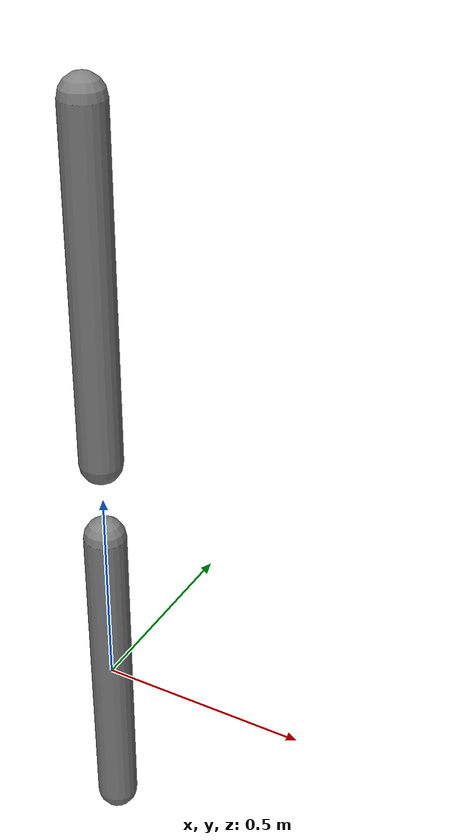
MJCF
<mujoco model="multi_joint_spring">
            <compiler angle="radian"/>
            <option gravity="0 0 0" timestep="0.001"/>
            <worldbody>
                <body name="link1" pos="0 0 1">
                    <joint name="j1" type="hinge" axis="0 1 0"
                           stiffness="100" damping="10" springref="0.2"/>
                    <geom type="capsule" size="0.05 0.4" mass="1.0"/>
                    <body name="link2" pos="0 0 -1">
                        <joint name="j2" type="hinge" axis="0 1 0"
                               stiffness="100" damping="10" springref="-0.3"/>
                        <geom type="capsule" size="0.05 0.4" mass="1.0"/>
                    </body>
                </body>
            </worldbody>
        </mujoco>
